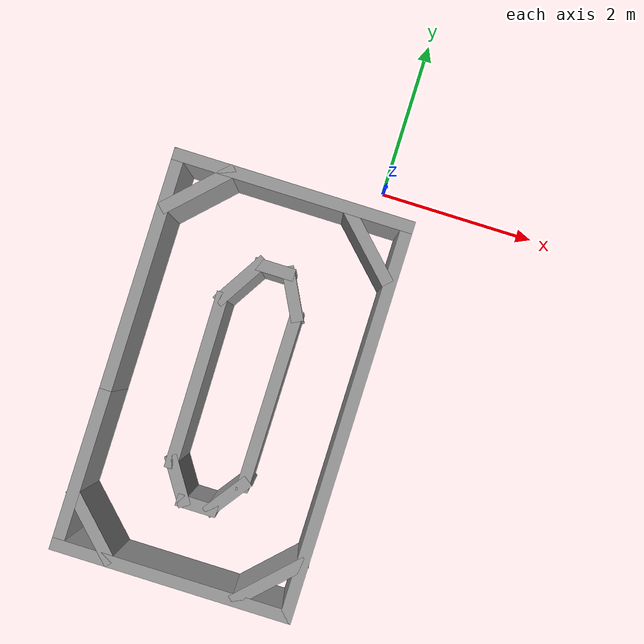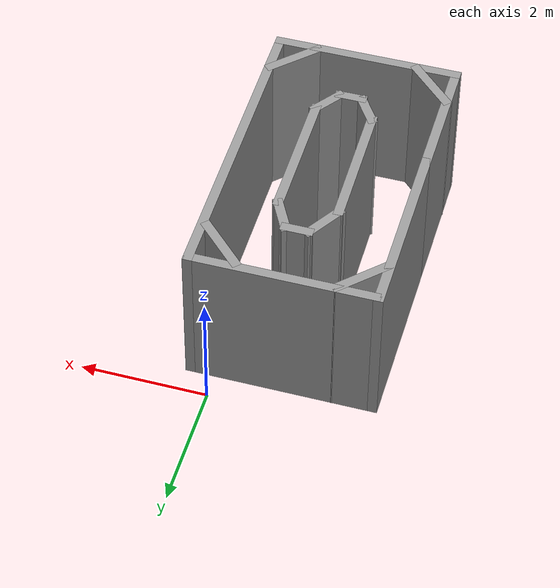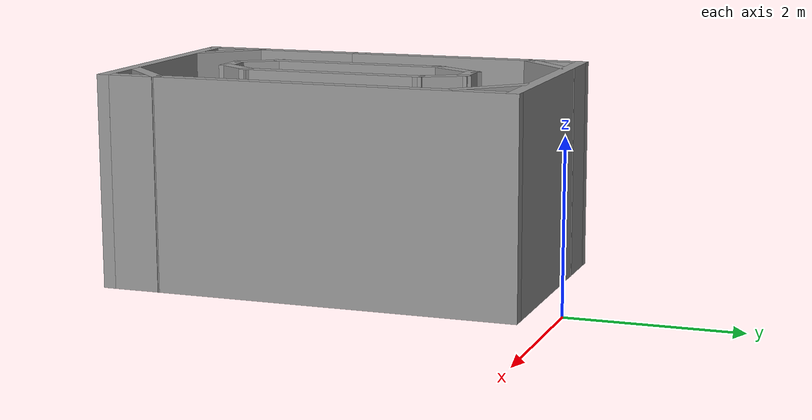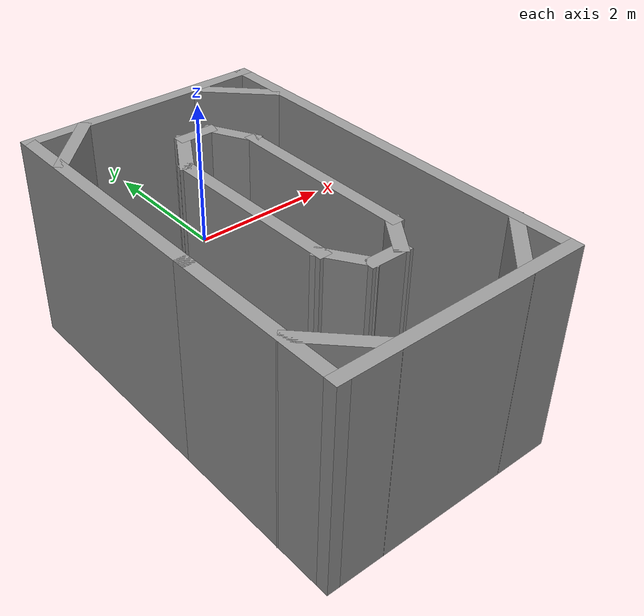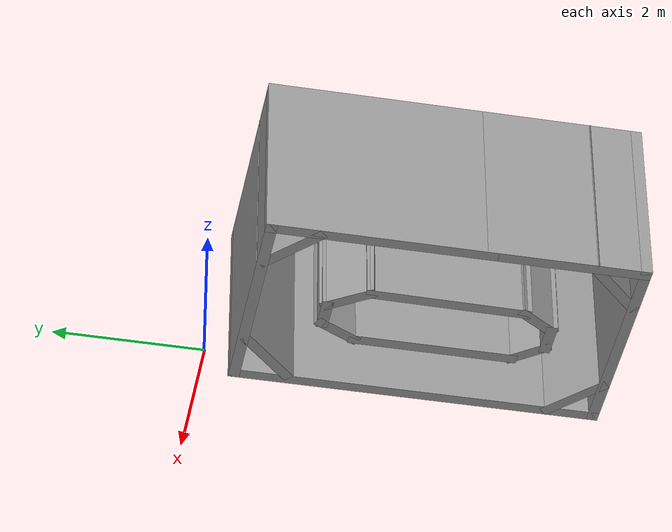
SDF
<?xml version='1.0'?>
<sdf version='1.7'>
  <model name='circular_world'>
    <pose>-1.045 -2.69355 0 0 -0 0</pose>
    <link name='Wall_0'>
      <collision name='Wall_0_Collision'>
        <geometry>
          <box>
            <size>3 0.15 2.5</size>
          </box>
        </geometry>
        <pose>0 0 1.25 0 -0 0</pose>
      </collision>
      <visual name='Wall_0_Visual'>
        <pose>0 0 1.25 0 -0 0</pose>
        <geometry>
          <box>
            <size>3 0.15 2.5</size>
          </box>
        </geometry>
        <material>
          <script>
            <uri>file://media/materials/scripts/gazebo.material</uri>
            <name>Gazebo/Grey</name>
          </script>
          <ambient>1 1 1 1</ambient>
        </material>
        <meta>
          <layer>0</layer>
        </meta>
      </visual>
      <pose>-1.425 0.808553 0 0 -0 1.5708</pose>
    </link>
    <link name='Wall_1'>
      <collision name='Wall_1_Collision'>
        <geometry>
          <box>
            <size>3 0.15 2.5</size>
          </box>
        </geometry>
        <pose>0 0 1.25 0 -0 0</pose>
      </collision>
      <visual name='Wall_1_Visual'>
        <pose>0 0 1.25 0 -0 0</pose>
        <geometry>
          <box>
            <size>3 0.15 2.5</size>
          </box>
        </geometry>
        <material>
          <script>
            <uri>file://media/materials/scripts/gazebo.material</uri>
            <name>Gazebo/Grey</name>
          </script>
          <ambient>1 1 1 1</ambient>
        </material>
        <meta>
          <layer>0</layer>
        </meta>
      </visual>
      <pose>-0 2.23355 0 0 -0 0</pose>
    </link>
    <link name='Wall_12'>
      <collision name='Wall_12_Collision'>
        <geometry>
          <box>
            <size>1 0.15 2.5</size>
          </box>
        </geometry>
        <pose>0 0 1.25 0 -0 0</pose>
      </collision>
      <visual name='Wall_12_Visual'>
        <pose>0 0 1.25 0 -0 0</pose>
        <geometry>
          <box>
            <size>1 0.15 2.5</size>
          </box>
        </geometry>
        <material>
          <script>
            <uri>file://media/materials/scripts/gazebo.material</uri>
            <name>Gazebo/Grey</name>
          </script>
          <ambient>1 1 1 1</ambient>
        </material>
        <meta>
          <layer>0</layer>
        </meta>
      </visual>
      <pose>1.10448 -2.28697 0 0 -0 -2.35619</pose>
    </link>
    <link name='Wall_14'>
      <collision name='Wall_14_Collision'>
        <geometry>
          <box>
            <size>1 0.15 2.5</size>
          </box>
        </geometry>
        <pose>0 0 1.25 0 -0 0</pose>
      </collision>
      <visual name='Wall_14_Visual'>
        <pose>0 0 1.25 0 -0 0</pose>
        <geometry>
          <box>
            <size>1 0.15 2.5</size>
          </box>
        </geometry>
        <material>
          <script>
            <uri>file://media/materials/scripts/gazebo.material</uri>
            <name>Gazebo/Grey</name>
          </script>
          <ambient>1 1 1 1</ambient>
        </material>
        <meta>
          <layer>0</layer>
        </meta>
      </visual>
      <pose>1.04552 1.86303 0 0 -0 -0.785398</pose>
    </link>
    <link name='Wall_18'>
      <collision name='Wall_18_Collision'>
        <geometry>
          <box>
            <size>2.18048 0.15 2.5</size>
          </box>
        </geometry>
        <pose>0 0 1.25 0 -0 0</pose>
      </collision>
      <visual name='Wall_18_Visual'>
        <pose>0 0 1.25 0 -0 0</pose>
        <geometry>
          <box>
            <size>2.18048 0.15 2.5</size>
          </box>
        </geometry>
        <material>
          <script>
            <uri>file://media/materials/scripts/gazebo.material</uri>
            <name>Gazebo/Grey</name>
          </script>
          <ambient>1 1 1 1</ambient>
        </material>
        <meta>
          <layer>0</layer>
        </meta>
      </visual>
      <pose>-0.425 -0.261254 0 0 -0 1.58065</pose>
    </link>
    <link name='Wall_2'>
      <collision name='Wall_2_Collision'>
        <geometry>
          <box>
            <size>5 0.15 2.5</size>
          </box>
        </geometry>
        <pose>0 0 1.25 0 -0 0</pose>
      </collision>
      <visual name='Wall_2_Visual'>
        <pose>0 0 1.25 0 -0 0</pose>
        <geometry>
          <box>
            <size>5 0.15 2.5</size>
          </box>
        </geometry>
        <material>
          <script>
            <uri>file://media/materials/scripts/gazebo.material</uri>
            <name>Gazebo/Grey</name>
          </script>
          <ambient>1 1 1 1</ambient>
        </material>
        <meta>
          <layer>0</layer>
        </meta>
      </visual>
      <pose>1.425 -0.191447 0 0 -0 -1.5708</pose>
    </link>
    <link name='Wall_20'>
      <collision name='Wall_20_Collision'>
        <geometry>
          <box>
            <size>2.25 0.15 2.5</size>
          </box>
        </geometry>
        <pose>0 0 1.25 0 -0 0</pose>
      </collision>
      <visual name='Wall_20_Visual'>
        <pose>0 0 1.25 0 -0 0</pose>
        <geometry>
          <box>
            <size>2.25 0.15 2.5</size>
          </box>
        </geometry>
        <material>
          <script>
            <uri>file://media/materials/scripts/gazebo.material</uri>
            <name>Gazebo/Grey</name>
          </script>
          <ambient>1 1 1 1</ambient>
        </material>
        <meta>
          <layer>0</layer>
        </meta>
      </visual>
      <pose>0.475 -0.236447 0 0 -0 -1.5708</pose>
    </link>
    <link name='Wall_22'>
      <collision name='Wall_22_Collision'>
        <geometry>
          <box>
            <size>0.5 0.15 2.5</size>
          </box>
        </geometry>
        <pose>0 0 1.25 0 -0 0</pose>
      </collision>
      <visual name='Wall_22_Visual'>
        <pose>0 0 1.25 0 -0 0</pose>
        <geometry>
          <box>
            <size>0.5 0.15 2.5</size>
          </box>
        </geometry>
        <material>
          <script>
            <uri>file://media/materials/scripts/gazebo.material</uri>
            <name>Gazebo/Grey</name>
          </script>
          <ambient>1 1 1 1</ambient>
        </material>
        <meta>
          <layer>0</layer>
        </meta>
      </visual>
      <pose>0.06 1.27355 0 0 -0 3.14159</pose>
    </link>
    <link name='Wall_23'>
      <collision name='Wall_23_Collision'>
        <geometry>
          <box>
            <size>0.760246 0.15 2.5</size>
          </box>
        </geometry>
        <pose>0 0 1.25 0 -0 0</pose>
      </collision>
      <visual name='Wall_23_Visual'>
        <pose>0 0 1.25 0 -0 0</pose>
        <geometry>
          <box>
            <size>0.760246 0.15 2.5</size>
          </box>
        </geometry>
        <material>
          <script>
            <uri>file://media/materials/scripts/gazebo.material</uri>
            <name>Gazebo/Grey</name>
          </script>
          <ambient>1 1 1 1</ambient>
        </material>
        <meta>
          <layer>0</layer>
        </meta>
      </visual>
      <pose>-0.275 1.02375 0 0 -0 -2.12278</pose>
    </link>
    <link name='Wall_25'>
      <collision name='Wall_25_Collision'>
        <geometry>
          <box>
            <size>0.668845 0.15 2.5</size>
          </box>
        </geometry>
        <pose>0 0 1.25 0 -0 0</pose>
      </collision>
      <visual name='Wall_25_Visual'>
        <pose>0 0 1.25 0 -0 0</pose>
        <geometry>
          <box>
            <size>0.668845 0.15 2.5</size>
          </box>
        </geometry>
        <material>
          <script>
            <uri>file://media/materials/scripts/gazebo.material</uri>
            <name>Gazebo/Grey</name>
          </script>
          <ambient>1 1 1 1</ambient>
        </material>
        <meta>
          <layer>0</layer>
        </meta>
      </visual>
      <pose>0.355 1.05355 0 0 -0 -1.08991</pose>
    </link>
    <link name='Wall_27'>
      <collision name='Wall_27_Collision'>
        <geometry>
          <box>
            <size>0.5 0.15 2.5</size>
          </box>
        </geometry>
        <pose>0 0 1.25 0 -0 0</pose>
      </collision>
      <visual name='Wall_27_Visual'>
        <pose>0 0 1.25 0 -0 0</pose>
        <geometry>
          <box>
            <size>0.5 0.15 2.5</size>
          </box>
        </geometry>
        <material>
          <script>
            <uri>file://media/materials/scripts/gazebo.material</uri>
            <name>Gazebo/Grey</name>
          </script>
          <ambient>1 1 1 1</ambient>
        </material>
        <meta>
          <layer>0</layer>
        </meta>
      </visual>
      <pose>0.02 -1.67645 0 0 -0 0</pose>
    </link>
    <link name='Wall_28'>
      <collision name='Wall_28_Collision'>
        <geometry>
          <box>
            <size>0.630104 0.15 2.5</size>
          </box>
        </geometry>
        <pose>0 0 1.25 0 -0 0</pose>
      </collision>
      <visual name='Wall_28_Visual'>
        <pose>0 0 1.25 0 -0 0</pose>
        <geometry>
          <box>
            <size>0.630104 0.15 2.5</size>
          </box>
        </geometry>
        <material>
          <script>
            <uri>file://media/materials/scripts/gazebo.material</uri>
            <name>Gazebo/Grey</name>
          </script>
          <ambient>1 1 1 1</ambient>
        </material>
        <meta>
          <layer>0</layer>
        </meta>
      </visual>
      <pose>0.335 -1.47145 0 0 -0 0.948126</pose>
    </link>
    <link name='Wall_3'>
      <collision name='Wall_3_Collision'>
        <geometry>
          <box>
            <size>3 0.15 2.5</size>
          </box>
        </geometry>
        <pose>0 0 1.25 0 -0 0</pose>
      </collision>
      <visual name='Wall_3_Visual'>
        <pose>0 0 1.25 0 -0 0</pose>
        <geometry>
          <box>
            <size>3 0.15 2.5</size>
          </box>
        </geometry>
        <material>
          <script>
            <uri>file://media/materials/scripts/gazebo.material</uri>
            <name>Gazebo/Grey</name>
          </script>
          <ambient>1 1 1 1</ambient>
        </material>
        <meta>
          <layer>0</layer>
        </meta>
      </visual>
      <pose>-0 -2.61645 0 0 -0 3.14159</pose>
    </link>
    <link name='Wall_30'>
      <collision name='Wall_30_Collision'>
        <geometry>
          <box>
            <size>0.627074 0.15 2.5</size>
          </box>
        </geometry>
        <pose>0 0 1.25 0 -0 0</pose>
      </collision>
      <visual name='Wall_30_Visual'>
        <pose>0 0 1.25 0 -0 0</pose>
        <geometry>
          <box>
            <size>0.627074 0.15 2.5</size>
          </box>
        </geometry>
        <material>
          <script>
            <uri>file://media/materials/scripts/gazebo.material</uri>
            <name>Gazebo/Grey</name>
          </script>
          <ambient>1 1 1 1</ambient>
        </material>
        <meta>
          <layer>0</layer>
        </meta>
      </visual>
      <pose>-0.285 -1.46645 0 0 -0 2.14717</pose>
    </link>
    <link name='Wall_4'>
      <collision name='Wall_4_Collision'>
        <geometry>
          <box>
            <size>2.15 0.15 2.5</size>
          </box>
        </geometry>
        <pose>0 0 1.25 0 -0 0</pose>
      </collision>
      <visual name='Wall_4_Visual'>
        <pose>0 0 1.25 0 -0 0</pose>
        <geometry>
          <box>
            <size>2.15 0.15 2.5</size>
          </box>
        </geometry>
        <material>
          <script>
            <uri>file://media/materials/scripts/gazebo.material</uri>
            <name>Gazebo/Grey</name>
          </script>
          <ambient>1 1 1 1</ambient>
        </material>
        <meta>
          <layer>0</layer>
        </meta>
      </visual>
      <pose>-1.425 -1.61645 0 0 -0 1.5708</pose>
    </link>
    <link name='Wall_6'>
      <collision name='Wall_6_Collision'>
        <geometry>
          <box>
            <size>1 0.15 2.5</size>
          </box>
        </geometry>
        <pose>0 0 1.25 0 -0 0</pose>
      </collision>
      <visual name='Wall_6_Visual'>
        <pose>0 0 1.25 0 -0 0</pose>
        <geometry>
          <box>
            <size>1 0.15 2.5</size>
          </box>
        </geometry>
        <material>
          <script>
            <uri>file://media/materials/scripts/gazebo.material</uri>
            <name>Gazebo/Grey</name>
          </script>
          <ambient>1 1 1 1</ambient>
        </material>
        <meta>
          <layer>0</layer>
        </meta>
      </visual>
      <pose>-1.08948 1.91097 0 0 -0 -2.35619</pose>
    </link>
    <link name='Wall_9'>
      <collision name='Wall_9_Collision'>
        <geometry>
          <box>
            <size>1 0.15 2.5</size>
          </box>
        </geometry>
        <pose>0 0 1.25 0 -0 0</pose>
      </collision>
      <visual name='Wall_9_Visual'>
        <pose>0 0 1.25 0 -0 0</pose>
        <geometry>
          <box>
            <size>1 0.15 2.5</size>
          </box>
        </geometry>
        <material>
          <script>
            <uri>file://media/materials/scripts/gazebo.material</uri>
            <name>Gazebo/Grey</name>
          </script>
          <ambient>1 1 1 1</ambient>
        </material>
        <meta>
          <layer>0</layer>
        </meta>
      </visual>
      <pose>-1.10448 -2.28697 0 0 -0 -0.785398</pose>
    </link>
    <static>1</static>
  </model>
</sdf>
